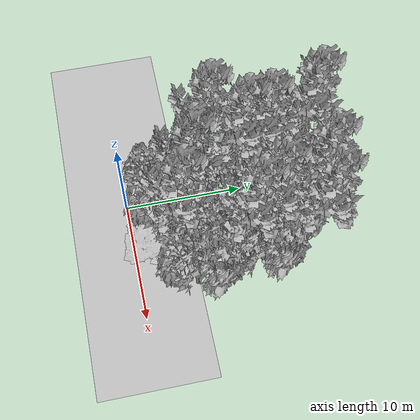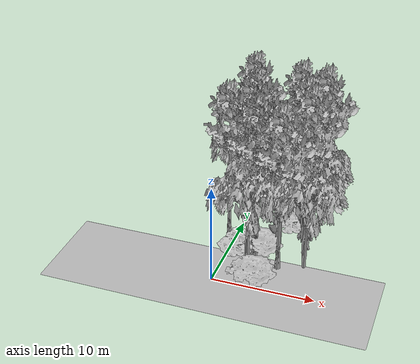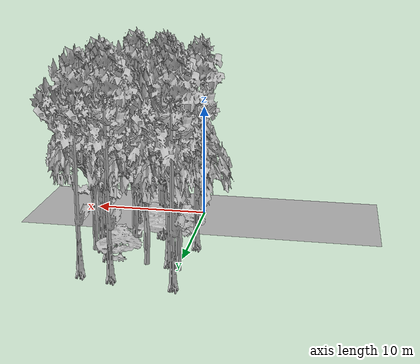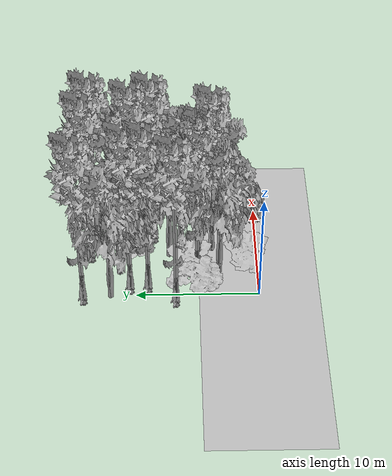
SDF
<sdf version="1.7">
 <world name="default">
  <model name="ground_plane">
   <static>1</static>
   <link name="link">
    <collision name="collision">
     <pose>-50 0 0 0 -0 0</pose>
     <geometry><plane><normal>0 0 1</normal><size>100 100</size></plane></geometry>
     <surface><contact><ode><min_depth>0.01</min_depth><max_vel>0</max_vel></ode></contact></surface>
    </collision>
    <visual name="grass">
     <cast_shadows>0</cast_shadows>
     <geometry>
      <mesh>
       <scale>0.5814285714285714 0.18142857142857144 0.1</scale>
       <uri>file://grass_plane/meshes/grass_plane.dae</uri>
      </mesh>
     </geometry>
    </visual>
   </link>
  </model>
  <model name="Tree 2">
   <static>1</static>
   <pose>3.012863394360771 5.411179825811907 0 1.57079 -0 0</pose>
   <link name="link">
    <collision name="collision">
     <geometry><mesh><scale>3 2 3</scale><uri>model://tree_3/meshes/tree_3.obj</uri></mesh></geometry>
    </collision>
    <visual name="visual">
     <geometry><mesh><scale>3 2 3</scale><uri>model://tree_3/meshes/tree_3.obj</uri></mesh></geometry>
    </visual>
   </link>
  </model>
  <model name="Tree 7">
   <static>1</static>
   <pose>1.0229062971765188 10.498995692659502 0 1.57079 -0 0</pose>
   <link name="link">
    <collision name="collision">
     <geometry><mesh><scale>3.5 5 3.5</scale><uri>model://tree_9/meshes/tree_9.obj</uri></mesh></geometry>
    </collision>
    <visual name="visual">
     <geometry><mesh><scale>3.5 5 3.5</scale><uri>model://tree_9/meshes/tree_9.obj</uri></mesh></geometry>
    </visual>
   </link>
  </model>
  <model name="Tree 21">
   <static>1</static>
   <pose>6.1425054638443015 10.204391214588146 0 1.57079 -0 0</pose>
   <link name="link">
    <collision name="collision">
     <geometry><mesh><scale>3.5 5 3.5</scale><uri>model://tree_9/meshes/tree_9.obj</uri></mesh></geometry>
    </collision>
    <visual name="visual">
     <geometry><mesh><scale>3.5 5 3.5</scale><uri>model://tree_9/meshes/tree_9.obj</uri></mesh></geometry>
    </visual>
   </link>
  </model>
  <model name="Tree 84">
   <static>1</static>
   <pose>3.6792325602956595 0.6808440233269941 0 1.57079 -0 0</pose>
   <link name="link">
    <collision name="collision">
     <geometry><mesh><scale>3 2 3</scale><uri>model://tree_3/meshes/tree_3.obj</uri></mesh></geometry>
    </collision>
    <visual name="visual">
     <geometry><mesh><scale>3 2 3</scale><uri>model://tree_3/meshes/tree_3.obj</uri></mesh></geometry>
    </visual>
   </link>
  </model>
  <model name="Tree 86">
   <static>1</static>
   <pose>7.062438318411452 8.534126736629805 0 1.57079 -0 0</pose>
   <link name="link">
    <collision name="collision">
     <geometry><mesh><scale>3.5 5 3.5</scale><uri>model://tree_9/meshes/tree_9.obj</uri></mesh></geometry>
    </collision>
    <visual name="visual">
     <geometry><mesh><scale>3.5 5 3.5</scale><uri>model://tree_9/meshes/tree_9.obj</uri></mesh></geometry>
    </visual>
   </link>
  </model>
  <model name="Tree 98">
   <static>1</static>
   <pose>7.326071394738754 13.368546899792094 0 1.57079 -0 0</pose>
   <link name="link">
    <collision name="collision">
     <geometry><mesh><scale>3.5 5 3.5</scale><uri>model://tree_9/meshes/tree_9.obj</uri></mesh></geometry>
    </collision>
    <visual name="visual">
     <geometry><mesh><scale>3.5 5 3.5</scale><uri>model://tree_9/meshes/tree_9.obj</uri></mesh></geometry>
    </visual>
   </link>
  </model>
  <model name="Tree 106">
   <static>1</static>
   <pose>2.4434437588759153 3.20791717774172 0 1.57079 -0 0</pose>
   <link name="link">
    <collision name="collision">
     <geometry><mesh><scale>3.5 5 3.5</scale><uri>model://tree_2/meshes/tree_2.obj</uri></mesh></geometry>
    </collision>
    <visual name="visual">
     <geometry><mesh><scale>3.5 5 3.5</scale><uri>model://tree_2/meshes/tree_2.obj</uri></mesh></geometry>
    </visual>
   </link>
  </model>
  <model name="Tree 219">
   <static>1</static>
   <pose>4.356755899825558 6.334150377665608 0 1.57079 -0 0</pose>
   <link name="link">
    <collision name="collision">
     <geometry><mesh><scale>3.5 5 3.5</scale><uri>model://tree_2/meshes/tree_2.obj</uri></mesh></geometry>
    </collision>
    <visual name="visual">
     <geometry><mesh><scale>3.5 5 3.5</scale><uri>model://tree_2/meshes/tree_2.obj</uri></mesh></geometry>
    </visual>
   </link>
  </model>
  <model name="Tree 231">
   <static>1</static>
   <pose>2.903460884549631 4.89802479575274 0 1.57079 -0 0</pose>
   <link name="link">
    <collision name="collision">
     <geometry><mesh><scale>3.5 5 3.5</scale><uri>model://tree_9/meshes/tree_9.obj</uri></mesh></geometry>
    </collision>
    <visual name="visual">
     <geometry><mesh><scale>3.5 5 3.5</scale><uri>model://tree_9/meshes/tree_9.obj</uri></mesh></geometry>
    </visual>
   </link>
  </model>
  <model name="Tree 251">
   <static>1</static>
   <pose>7.684559354953656 4.742961506194746 0 1.57079 -0 0</pose>
   <link name="link">
    <collision name="collision">
     <geometry><mesh><scale>3.5 5 3.5</scale><uri>model://tree_2/meshes/tree_2.obj</uri></mesh></geometry>
    </collision>
    <visual name="visual">
     <geometry><mesh><scale>3.5 5 3.5</scale><uri>model://tree_2/meshes/tree_2.obj</uri></mesh></geometry>
    </visual>
   </link>
  </model>
  <model name="Tree 259">
   <static>1</static>
   <pose>4.496443393116429 7.278874234345274 0 1.57079 -0 0</pose>
   <link name="link">
    <collision name="collision">
     <geometry><mesh><scale>3.5 5 3.5</scale><uri>model://tree_2/meshes/tree_2.obj</uri></mesh></geometry>
    </collision>
    <visual name="visual">
     <geometry><mesh><scale>3.5 5 3.5</scale><uri>model://tree_2/meshes/tree_2.obj</uri></mesh></geometry>
    </visual>
   </link>
  </model>
  <model name="Tree 265">
   <static>1</static>
   <pose>2.573261918428159 5.025325842975267 0 1.57079 -0 0</pose>
   <link name="link">
    <collision name="collision">
     <geometry><mesh><scale>3.5 5 3.5</scale><uri>model://tree_9/meshes/tree_9.obj</uri></mesh></geometry>
    </collision>
    <visual name="visual">
     <geometry><mesh><scale>3.5 5 3.5</scale><uri>model://tree_9/meshes/tree_9.obj</uri></mesh></geometry>
    </visual>
   </link>
  </model>
  <model name="Tree 288">
   <static>1</static>
   <pose>6.4269508016786006 9.282206525190155 0 1.57079 -0 0</pose>
   <link name="link">
    <collision name="collision">
     <geometry><mesh><scale>3.5 5 3.5</scale><uri>model://tree_2/meshes/tree_2.obj</uri></mesh></geometry>
    </collision>
    <visual name="visual">
     <geometry><mesh><scale>3.5 5 3.5</scale><uri>model://tree_2/meshes/tree_2.obj</uri></mesh></geometry>
    </visual>
   </link>
  </model>
  <model name="Tree 307">
   <static>1</static>
   <pose>-0.14849989789236417 14.316139375425745 0 1.57079 -0 0</pose>
   <link name="link">
    <collision name="collision">
     <geometry><mesh><scale>3.5 5 3.5</scale><uri>model://tree_9/meshes/tree_9.obj</uri></mesh></geometry>
    </collision>
    <visual name="visual">
     <geometry><mesh><scale>3.5 5 3.5</scale><uri>model://tree_9/meshes/tree_9.obj</uri></mesh></geometry>
    </visual>
   </link>
  </model>
  <model name="Tree 310">
   <static>1</static>
   <pose>-0.20167551549276652 12.046701981795856 0 1.57079 -0 0</pose>
   <link name="link">
    <collision name="collision">
     <geometry><mesh><scale>3.5 5 3.5</scale><uri>model://tree_2/meshes/tree_2.obj</uri></mesh></geometry>
    </collision>
    <visual name="visual">
     <geometry><mesh><scale>3.5 5 3.5</scale><uri>model://tree_2/meshes/tree_2.obj</uri></mesh></geometry>
    </visual>
   </link>
  </model>
  <model name="Tree 365">
   <static>1</static>
   <pose>0.7401781537164567 5.058166934674254 0 1.57079 -0 0</pose>
   <link name="link">
    <collision name="collision">
     <geometry><mesh><scale>4 2.5 4</scale><uri>model://tree_1/meshes/tree_1.obj</uri></mesh></geometry>
    </collision>
    <visual name="visual">
     <geometry><mesh><scale>4 2.5 4</scale><uri>model://tree_1/meshes/tree_1.obj</uri></mesh></geometry>
    </visual>
   </link>
  </model>
  <model name="Tree 372">
   <static>1</static>
   <pose>1.0654145817432408 9.030045459013724 0 1.57079 -0 0</pose>
   <link name="link">
    <collision name="collision">
     <geometry><mesh><scale>3.5 5 3.5</scale><uri>model://tree_9/meshes/tree_9.obj</uri></mesh></geometry>
    </collision>
    <visual name="visual">
     <geometry><mesh><scale>3.5 5 3.5</scale><uri>model://tree_9/meshes/tree_9.obj</uri></mesh></geometry>
    </visual>
   </link>
  </model>
  <model name="Tree 380">
   <static>1</static>
   <pose>5.418196766329466 3.7786304247357556 0 1.57079 -0 0</pose>
   <link name="link">
    <collision name="collision">
     <geometry><mesh><scale>3.5 5 3.5</scale><uri>model://tree_9/meshes/tree_9.obj</uri></mesh></geometry>
    </collision>
    <visual name="visual">
     <geometry><mesh><scale>3.5 5 3.5</scale><uri>model://tree_9/meshes/tree_9.obj</uri></mesh></geometry>
    </visual>
   </link>
  </model>
  <model name="Tree 409">
   <static>1</static>
   <pose>4.777932519573163 13.815696659116387 0 1.57079 -0 0</pose>
   <link name="link">
    <collision name="collision">
     <geometry><mesh><scale>3.5 5 3.5</scale><uri>model://tree_9/meshes/tree_9.obj</uri></mesh></geometry>
    </collision>
    <visual name="visual">
     <geometry><mesh><scale>3.5 5 3.5</scale><uri>model://tree_9/meshes/tree_9.obj</uri></mesh></geometry>
    </visual>
   </link>
  </model>
  <model name="Tree 466">
   <static>1</static>
   <pose>4.875394074801882 10.734962455053747 0 1.57079 -0 0</pose>
   <link name="link">
    <collision name="collision">
     <geometry><mesh><scale>4 2.5 4</scale><uri>model://tree_1/meshes/tree_1.obj</uri></mesh></geometry>
    </collision>
    <visual name="visual">
     <geometry><mesh><scale>4 2.5 4</scale><uri>model://tree_1/meshes/tree_1.obj</uri></mesh></geometry>
    </visual>
   </link>
  </model>
  <model name="Tree 514">
   <static>1</static>
   <pose>2.469095588640812 11.358158990416474 0 1.57079 -0 0</pose>
   <link name="link">
    <collision name="collision">
     <geometry><mesh><scale>3.5 5 3.5</scale><uri>model://tree_2/meshes/tree_2.obj</uri></mesh></geometry>
    </collision>
    <visual name="visual">
     <geometry><mesh><scale>3.5 5 3.5</scale><uri>model://tree_2/meshes/tree_2.obj</uri></mesh></geometry>
    </visual>
   </link>
  </model>
  <model name="Tree 520">
   <static>1</static>
   <pose>7.240112431369077 9.394412967938866 0 1.57079 -0 0</pose>
   <link name="link">
    <collision name="collision">
     <geometry><mesh><scale>3.5 5 3.5</scale><uri>model://tree_2/meshes/tree_2.obj</uri></mesh></geometry>
    </collision>
    <visual name="visual">
     <geometry><mesh><scale>3.5 5 3.5</scale><uri>model://tree_2/meshes/tree_2.obj</uri></mesh></geometry>
    </visual>
   </link>
  </model>
  <model name="Tree 539">
   <static>1</static>
   <pose>-0.51465169969957 6.78330752362853 0 1.57079 -0 0</pose>
   <link name="link">
    <collision name="collision">
     <geometry><mesh><scale>3.5 5 3.5</scale><uri>model://tree_9/meshes/tree_9.obj</uri></mesh></geometry>
    </collision>
    <visual name="visual">
     <geometry><mesh><scale>3.5 5 3.5</scale><uri>model://tree_9/meshes/tree_9.obj</uri></mesh></geometry>
    </visual>
   </link>
  </model>
 </world>
</sdf>
